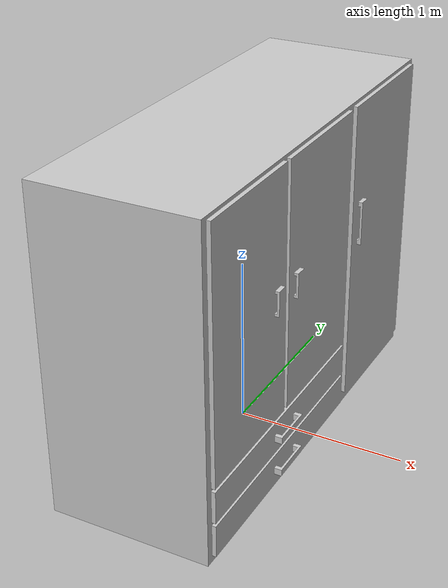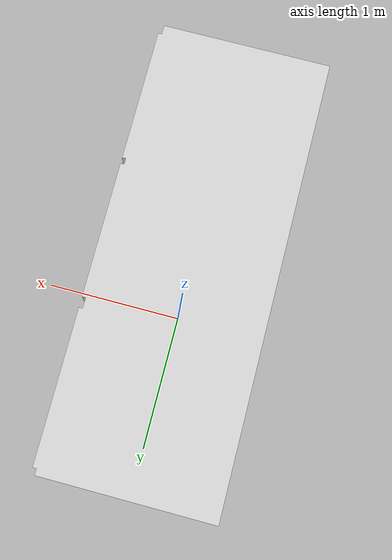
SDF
<sdf version="1.6">
	<model name="closet1">
		<static>true</static>
		<pose>0 0 0 0 0 0</pose>
		<link name="closetaxis">
			<collision name="collision">
				<geometry>
					<mesh>
						<uri>meshes/closet1.dae</uri>
					</mesh>
				</geometry>
			</collision>
			<visual name="visual">
				<geometry>
					<mesh>
						<uri>meshes/closet1.dae</uri>
					</mesh>
				</geometry>
			</visual>
		</link>
	</model>
</sdf>
